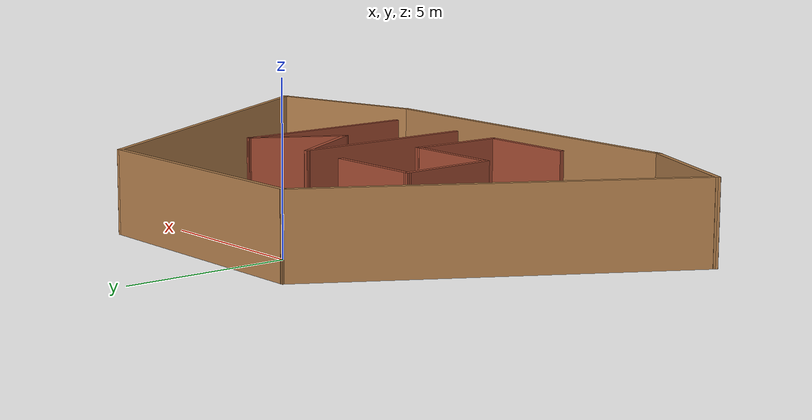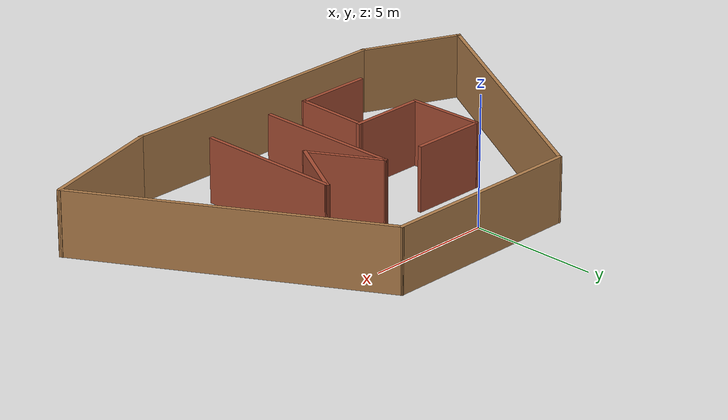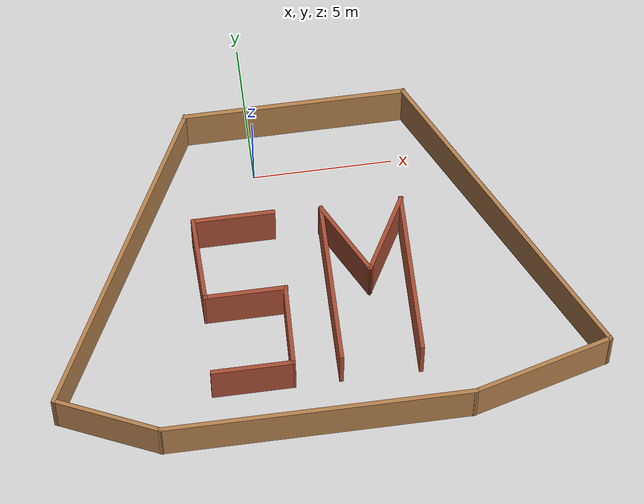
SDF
<?xml version='1.0'?>
<sdf version='1.6'>
  <model name='sm_map'>
    <pose frame=''>1.73758 -4.13873 0 0 -0 0</pose>
    <link name='Wall_10'>
      <collision name='Wall_10_Collision'>
        <geometry>
          <box>
            <size>5.75 0.15 2.5</size>
          </box>
        </geometry>
        <pose frame=''>0 0 1.25 0 -0 0</pose>
      </collision>
      <visual name='Wall_10_Visual'>
        <pose frame=''>0 0 1.25 0 -0 0</pose>
        <geometry>
          <box>
            <size>5.75 0.15 2.5</size>
          </box>
        </geometry>
        <material>
          <script>
            <uri>file://media/materials/scripts/gazebo.material</uri>
            <name>Gazebo/Bricks</name>
          </script>
          <ambient>1 1 1 1</ambient>
        </material>
      </visual>
      <pose frame=''>0.376451 -1.1179 0 0 -0 1.5708</pose>
    </link>
    <link name='Wall_11'>
      <collision name='Wall_11_Collision'>
        <geometry>
          <box>
            <size>3 0.15 2.5</size>
          </box>
        </geometry>
        <pose frame=''>0 0 1.25 0 -0 0</pose>
      </collision>
      <visual name='Wall_11_Visual'>
        <pose frame=''>0 0 1.25 0 -0 0</pose>
        <geometry>
          <box>
            <size>3 0.15 2.5</size>
          </box>
        </geometry>
        <material>
          <script>
            <uri>file://media/materials/scripts/gazebo.material</uri>
            <name>Gazebo/Bricks</name>
          </script>
          <ambient>1 1 1 1</ambient>
        </material>
      </visual>
      <pose frame=''>1.08895 0.44802 0 0 0 -1.0472</pose>
    </link>
    <link name='Wall_12'>
      <collision name='Wall_12_Collision'>
        <geometry>
          <box>
            <size>3 0.15 2.5</size>
          </box>
        </geometry>
        <pose frame=''>0 0 1.25 0 -0 0</pose>
      </collision>
      <visual name='Wall_12_Visual'>
        <pose frame=''>0 0 1.25 0 -0 0</pose>
        <geometry>
          <box>
            <size>3 0.15 2.5</size>
          </box>
        </geometry>
        <material>
          <script>
            <uri>file://media/materials/scripts/gazebo.material</uri>
            <name>Gazebo/Bricks</name>
          </script>
          <ambient>1 1 1 1</ambient>
        </material>
      </visual>
      <pose frame=''>2.51395 0.44802 0 0 -0 1.0472</pose>
    </link>
    <link name='Wall_13'>
      <collision name='Wall_13_Collision'>
        <geometry>
          <box>
            <size>5.75 0.15 2.5</size>
          </box>
        </geometry>
        <pose frame=''>0 0 1.25 0 -0 0</pose>
      </collision>
      <visual name='Wall_13_Visual'>
        <pose frame=''>0 0 1.25 0 -0 0</pose>
        <geometry>
          <box>
            <size>5.75 0.15 2.5</size>
          </box>
        </geometry>
        <material>
          <script>
            <uri>file://media/materials/scripts/gazebo.material</uri>
            <name>Gazebo/Bricks</name>
          </script>
          <ambient>1 1 1 1</ambient>
        </material>
      </visual>
      <pose frame=''>3.22645 -1.1179 0 0 0 -1.5708</pose>
    </link>
    <link name='Wall_16'>
      <collision name='Wall_16_Collision'>
        <geometry>
          <box>
            <size>11.75 0.15 2.5</size>
          </box>
        </geometry>
        <pose frame=''>0 0 1.25 0 -0 0</pose>
      </collision>
      <visual name='Wall_16_Visual'>
        <pose frame=''>0 0 1.25 0 -0 0</pose>
        <geometry>
          <box>
            <size>11.75 0.15 2.5</size>
          </box>
        </geometry>
        <material>
          <script>
            <uri>file://media/materials/scripts/gazebo.material</uri>
            <name>Gazebo/Wood</name>
          </script>
          <ambient>1 1 1 1</ambient>
        </material>
      </visual>
      <pose frame=''>-6.8875 0.766329 0 0 -0 1.0472</pose>
    </link>
    <link name='Wall_17'>
      <collision name='Wall_17_Collision'>
        <geometry>
          <box>
            <size>8 0.15 2.5</size>
          </box>
        </geometry>
        <pose frame=''>0 0 1.25 0 -0 0</pose>
      </collision>
      <visual name='Wall_17_Visual'>
        <pose frame=''>0 0 1.25 0 -0 0</pose>
        <geometry>
          <box>
            <size>8 0.15 2.5</size>
          </box>
        </geometry>
        <material>
          <script>
            <uri>file://media/materials/scripts/gazebo.material</uri>
            <name>Gazebo/Wood</name>
          </script>
          <ambient>1 1 1 1</ambient>
        </material>
      </visual>
      <pose frame=''>-0.0625 5.78928 0 0 -0 0</pose>
    </link>
    <link name='Wall_18'>
      <collision name='Wall_18_Collision'>
        <geometry>
          <box>
            <size>12 0.15 2.5</size>
          </box>
        </geometry>
        <pose frame=''>0 0 1.25 0 -0 0</pose>
      </collision>
      <visual name='Wall_18_Visual'>
        <pose frame=''>0 0 1.25 0 -0 0</pose>
        <geometry>
          <box>
            <size>12 0.15 2.5</size>
          </box>
        </geometry>
        <material>
          <script>
            <uri>file://media/materials/scripts/gazebo.material</uri>
            <name>Gazebo/Wood</name>
          </script>
          <ambient>1 1 1 1</ambient>
        </material>
      </visual>
      <pose frame=''>6.825 0.658075 0 0 0 -1.0472</pose>
    </link>
    <link name='Wall_19'>
      <collision name='Wall_19_Collision'>
        <geometry>
          <box>
            <size>5.25 0.15 2.5</size>
          </box>
        </geometry>
        <pose frame=''>0 0 1.25 0 -0 0</pose>
      </collision>
      <visual name='Wall_19_Visual'>
        <pose frame=''>0 0 1.25 0 -0 0</pose>
        <geometry>
          <box>
            <size>5.25 0.15 2.5</size>
          </box>
        </geometry>
        <material>
          <script>
            <uri>file://media/materials/scripts/gazebo.material</uri>
            <name>Gazebo/Wood</name>
          </script>
          <ambient>1 1 1 1</ambient>
        </material>
      </visual>
      <pose frame=''>7.32439 -5.13311 0 0 0 -2.87979</pose>
    </link>
    <link name='Wall_20'>
      <collision name='Wall_20_Collision'>
        <geometry>
          <box>
            <size>11.25 0.15 2.5</size>
          </box>
        </geometry>
        <pose frame=''>0 0 1.25 0 -0 0</pose>
      </collision>
      <visual name='Wall_20_Visual'>
        <pose frame=''>0 0 1.25 0 -0 0</pose>
        <geometry>
          <box>
            <size>11.25 0.15 2.5</size>
          </box>
        </geometry>
        <material>
          <script>
            <uri>file://media/materials/scripts/gazebo.material</uri>
            <name>Gazebo/Wood</name>
          </script>
          <ambient>1 1 1 1</ambient>
        </material>
      </visual>
      <pose frame=''>-0.688722 -5.7931 0 0 -0 3.14159</pose>
    </link>
    <link name='Wall_21'>
      <collision name='Wall_21_Collision'>
        <geometry>
          <box>
            <size>4.01712 0.15 2.5</size>
          </box>
        </geometry>
        <pose frame=''>0 0 1.25 0 -0 0</pose>
      </collision>
      <visual name='Wall_21_Visual'>
        <pose frame=''>0 0 1.25 0 -0 0</pose>
        <geometry>
          <box>
            <size>4.01712 0.15 2.5</size>
          </box>
        </geometry>
        <material>
          <script>
            <uri>file://media/materials/scripts/gazebo.material</uri>
            <name>Gazebo/Wood</name>
          </script>
          <ambient>1 1 1 1</ambient>
        </material>
      </visual>
      <pose frame=''>-8.01311 -5.02486 0 0 -0 2.733</pose>
    </link>
    <link name='Wall_3'>
      <collision name='Wall_3_Collision'>
        <geometry>
          <box>
            <size>3 0.15 2.5</size>
          </box>
        </geometry>
        <pose frame=''>0 0 1.25 0 -0 0</pose>
      </collision>
      <visual name='Wall_3_Visual'>
        <pose frame=''>0 0 1.25 0 -0 0</pose>
        <geometry>
          <box>
            <size>3 0.15 2.5</size>
          </box>
        </geometry>
        <material>
          <script>
            <uri>file://media/materials/scripts/gazebo.material</uri>
            <name>Gazebo/Bricks</name>
          </script>
          <ambient>1 1 1 1</ambient>
        </material>
      </visual>
      <pose frame=''>-2.75258 1.76873 0 0 -0 0</pose>
    </link>
    <link name='Wall_5'>
      <collision name='Wall_5_Collision'>
        <geometry>
          <box>
            <size>3.0469 0.15 2.5</size>
          </box>
        </geometry>
        <pose frame=''>0 0 1.25 0 -0 0</pose>
      </collision>
      <visual name='Wall_5_Visual'>
        <pose frame=''>0 0 1.25 0 -0 0</pose>
        <geometry>
          <box>
            <size>3.0469 0.15 2.5</size>
          </box>
        </geometry>
        <material>
          <script>
            <uri>file://media/materials/scripts/gazebo.material</uri>
            <name>Gazebo/Bricks</name>
          </script>
          <ambient>1 1 1 1</ambient>
        </material>
      </visual>
      <pose frame=''>-4.13934 0.320786 0 0 0 -1.54439</pose>
    </link>
    <link name='Wall_6'>
      <collision name='Wall_6_Collision'>
        <geometry>
          <box>
            <size>3 0.15 2.5</size>
          </box>
        </geometry>
        <pose frame=''>0 0 1.25 0 -0 0</pose>
      </collision>
      <visual name='Wall_6_Visual'>
        <pose frame=''>0 0 1.25 0 -0 0</pose>
        <geometry>
          <box>
            <size>3 0.15 2.5</size>
          </box>
        </geometry>
        <material>
          <script>
            <uri>file://media/materials/scripts/gazebo.material</uri>
            <name>Gazebo/Bricks</name>
          </script>
          <ambient>1 1 1 1</ambient>
        </material>
      </visual>
      <pose frame=''>-2.66081 -1.12716 0 0 -0 0</pose>
    </link>
    <link name='Wall_7'>
      <collision name='Wall_7_Collision'>
        <geometry>
          <box>
            <size>2.95516 0.15 2.5</size>
          </box>
        </geometry>
        <pose frame=''>0 0 1.25 0 -0 0</pose>
      </collision>
      <visual name='Wall_7_Visual'>
        <pose frame=''>0 0 1.25 0 -0 0</pose>
        <geometry>
          <box>
            <size>2.95516 0.15 2.5</size>
          </box>
        </geometry>
        <material>
          <script>
            <uri>file://media/materials/scripts/gazebo.material</uri>
            <name>Gazebo/Bricks</name>
          </script>
          <ambient>1 1 1 1</ambient>
        </material>
      </visual>
      <pose frame=''>-1.28934 -2.52921 0 0 0 -1.59806</pose>
    </link>
    <link name='Wall_8'>
      <collision name='Wall_8_Collision'>
        <geometry>
          <box>
            <size>3 0.15 2.5</size>
          </box>
        </geometry>
        <pose frame=''>0 0 1.25 0 -0 0</pose>
      </collision>
      <visual name='Wall_8_Visual'>
        <pose frame=''>0 0 1.25 0 -0 0</pose>
        <geometry>
          <box>
            <size>3 0.15 2.5</size>
          </box>
        </geometry>
        <material>
          <script>
            <uri>file://media/materials/scripts/gazebo.material</uri>
            <name>Gazebo/Bricks</name>
          </script>
          <ambient>1 1 1 1</ambient>
        </material>
      </visual>
      <pose frame=''>-2.75258 -3.93127 0 0 -0 3.14159</pose>
    </link>
    <static>1</static>
  </model>
</sdf>
